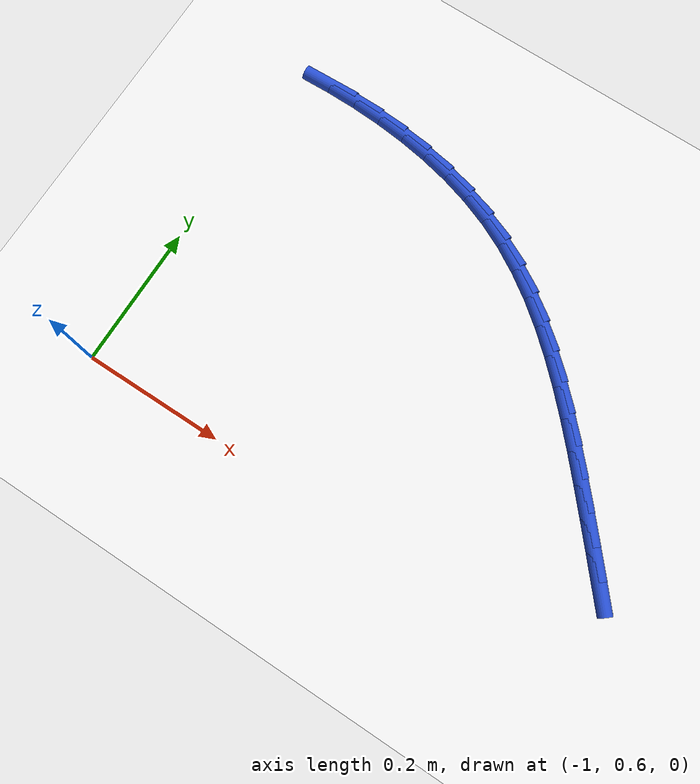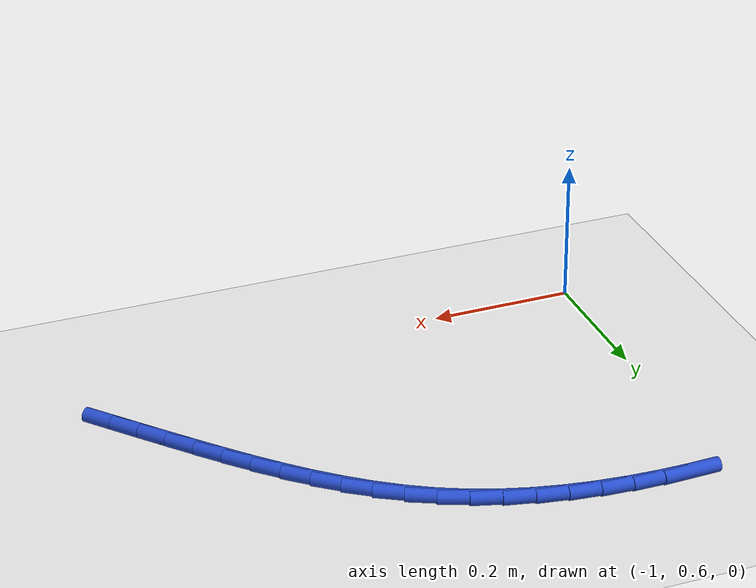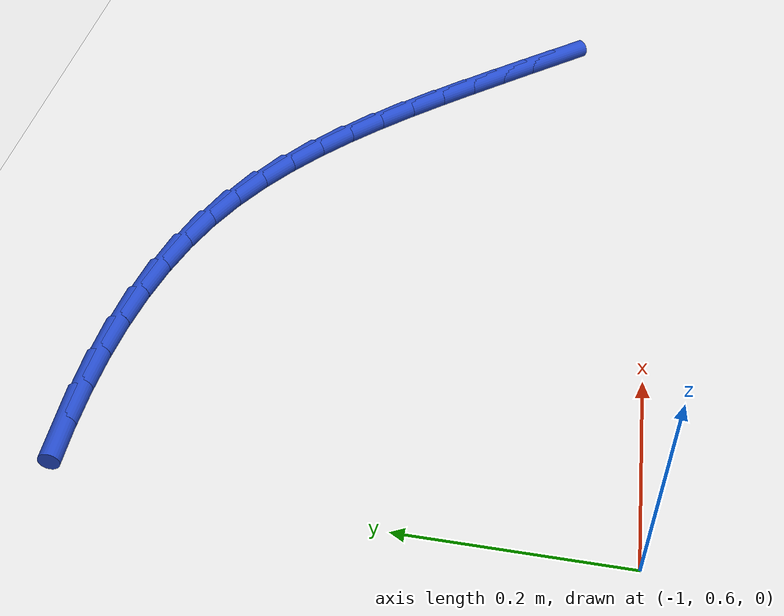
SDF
<sdf version="1.6">
 <world name="default">
  <model name="ground_plane">
   <static>1</static>
   <link name="link">
    <collision name="collision">
     <geometry><plane><normal>0 0 1</normal><size>100 100</size></plane></geometry>
     <surface><friction><ode><mu>100</mu><mu2>50</mu2></ode></friction></surface>
    </collision>
    <visual name="visual">
     <cast_shadows>0</cast_shadows>
     <geometry><plane><normal>0 0 1</normal><size>100 100</size></plane></geometry>
     <material>
      <script><uri>file://media/materials/scripts/gazebo.material</uri><name>Gazebo/WhiteGlow</name></script>
     </material>
    </visual>
   </link>
  </model>
  <model name="line">
   <link name="link_19">
    <pose>-0.29510876349324805 0.711496891847952 0.01 0 1.57 -0.8690527175127222</pose>
    <collision name="collision">
     <geometry><cylinder><radius>0.01</radius><length>0.08</length></cylinder></geometry>
    </collision>
    <visual name="visual">
     <material>
      <script><name>Gazebo/Blue</name><uri>file://media/materials/scripts/gazebo.material</uri></script>
     </material>
     <geometry><cylinder><radius>0.01</radius><length>0.08</length></cylinder></geometry>
    </visual>
   </link>
   <link name="link_20">
    <pose>-0.3224495873391285 0.7438424317667587 0.01 0 1.57 -0.8633180502594889</pose>
    <collision name="collision">
     <geometry><cylinder><radius>0.01</radius><length>0.08</length></cylinder></geometry>
    </collision>
    <visual name="visual">
     <material>
      <script><name>Gazebo/Blue</name><uri>file://media/materials/scripts/gazebo.material</uri></script>
     </material>
     <geometry><cylinder><radius>0.01</radius><length>0.08</length></cylinder></geometry>
    </visual>
   </link>
   <link name="link_21">
    <pose>-0.35008975559605277 0.7761643151670784 0.01 0 1.57 -0.8592175019860075</pose>
    <collision name="collision">
     <geometry><cylinder><radius>0.01</radius><length>0.08</length></cylinder></geometry>
    </collision>
    <visual name="visual">
     <material>
      <script><name>Gazebo/Blue</name><uri>file://media/materials/scripts/gazebo.material</uri></script>
     </material>
     <geometry><cylinder><radius>0.01</radius><length>0.08</length></cylinder></geometry>
    </visual>
   </link>
   <link name="link_22">
    <pose>-0.37794610384564287 0.8084698591030915 0.01 0 1.57 -0.8488404355890604</pose>
    <collision name="collision">
     <geometry><cylinder><radius>0.01</radius><length>0.08</length></cylinder></geometry>
    </collision>
    <visual name="visual">
     <material>
      <script><name>Gazebo/Blue</name><uri>file://media/materials/scripts/gazebo.material</uri></script>
     </material>
     <geometry><cylinder><radius>0.01</radius><length>0.08</length></cylinder></geometry>
    </visual>
   </link>
   <link name="link_23">
    <pose>-0.40613394637496614 0.8404820615667923 0.01 0 1.57 -0.830407488502026</pose>
    <collision name="collision">
     <geometry><cylinder><radius>0.01</radius><length>0.08</length></cylinder></geometry>
    </collision>
    <visual name="visual">
     <material>
      <script><name>Gazebo/Blue</name><uri>file://media/materials/scripts/gazebo.material</uri></script>
     </material>
     <geometry><cylinder><radius>0.01</radius><length>0.08</length></cylinder></geometry>
    </visual>
   </link>
   <link name="link_24">
    <pose>-0.43481061021927736 0.8718637376447229 0.01 0 1.57 -0.8036621426478653</pose>
    <collision name="collision">
     <geometry><cylinder><radius>0.01</radius><length>0.08</length></cylinder></geometry>
    </collision>
    <visual name="visual">
     <material>
      <script><name>Gazebo/Blue</name><uri>file://media/materials/scripts/gazebo.material</uri></script>
     </material>
     <geometry><cylinder><radius>0.01</radius><length>0.08</length></cylinder></geometry>
    </visual>
   </link>
   <link name="link_25">
    <pose>-0.4641334224138304 0.9022777024234249 0.01 0 1.57 -0.768227353477941</pose>
    <collision name="collision">
     <geometry><cylinder><radius>0.01</radius><length>0.08</length></cylinder></geometry>
    </collision>
    <visual name="visual">
     <material>
      <script><name>Gazebo/Blue</name><uri>file://media/materials/scripts/gazebo.material</uri></script>
     </material>
     <geometry><cylinder><radius>0.01</radius><length>0.08</length></cylinder></geometry>
    </visual>
   </link>
   <link name="link_26">
    <pose>-0.4942597099938798 0.9313867709894406 0.01 0 1.57 -0.7236518108471184</pose>
    <collision name="collision">
     <geometry><cylinder><radius>0.01</radius><length>0.08</length></cylinder></geometry>
    </collision>
    <visual name="visual">
     <material>
      <script><name>Gazebo/Blue</name><uri>file://media/materials/scripts/gazebo.material</uri></script>
     </material>
     <geometry><cylinder><radius>0.01</radius><length>0.08</length></cylinder></geometry>
    </visual>
   </link>
   <link name="link_27">
    <pose>-0.52534679999468 0.9588537584293113 0.01 0 1.57 -0.6694847480080146</pose>
    <collision name="collision">
     <geometry><cylinder><radius>0.01</radius><length>0.08</length></cylinder></geometry>
    </collision>
    <visual name="visual">
     <material>
      <script><name>Gazebo/Blue</name><uri>file://media/materials/scripts/gazebo.material</uri></script>
     </material>
     <geometry><cylinder><radius>0.01</radius><length>0.08</length></cylinder></geometry>
    </visual>
   </link>
   <link name="link_28">
    <pose>-0.5575520194514852 0.9843414798295791 0.01 0 1.57 -0.6053900049680409</pose>
    <collision name="collision">
     <geometry><cylinder><radius>0.01</radius><length>0.08</length></cylinder></geometry>
    </collision>
    <visual name="visual">
     <material>
      <script><name>Gazebo/Blue</name><uri>file://media/materials/scripts/gazebo.material</uri></script>
     </material>
     <geometry><cylinder><radius>0.01</radius><length>0.08</length></cylinder></geometry>
    </visual>
   </link>
   <link name="link_29">
    <pose>-0.5910326953995494 1.0075127502767853 0.01 0 1.57 -0.5313048802138673</pose>
    <collision name="collision">
     <geometry><cylinder><radius>0.01</radius><length>0.08</length></cylinder></geometry>
    </collision>
    <visual name="visual">
     <material>
      <script><name>Gazebo/Blue</name><uri>file://media/materials/scripts/gazebo.material</uri></script>
     </material>
     <geometry><cylinder><radius>0.01</radius><length>0.08</length></cylinder></geometry>
    </visual>
   </link>
   <link name="link_30">
    <pose>-0.6259461548741271 1.0280303848574723 0.01 0 1.57 -0.44820842569968217</pose>
    <collision name="collision">
     <geometry><cylinder><radius>0.01</radius><length>0.08</length></cylinder></geometry>
    </collision>
    <visual name="visual">
     <material>
      <script><name>Gazebo/Blue</name><uri>file://media/materials/scripts/gazebo.material</uri></script>
     </material>
     <geometry><cylinder><radius>0.01</radius><length>0.08</length></cylinder></geometry>
    </visual>
   </link>
   <link name="link_31">
    <pose>-0.6624360159127359 1.0455764378285675 0.01 0 1.57 -0.36526413194980517</pose>
    <collision name="collision">
     <geometry><cylinder><radius>0.01</radius><length>0.08</length></cylinder></geometry>
    </collision>
    <visual name="visual">
     <material>
      <script><name>Gazebo/Blue</name><uri>file://media/materials/scripts/gazebo.material</uri></script>
     </material>
     <geometry><cylinder><radius>0.01</radius><length>0.08</length></cylinder></geometry>
    </visual>
   </link>
   <link name="link_32">
    <pose>-0.7004466158305225 1.0601126334743556 0.01 0 1.57 -0.28916126103859213</pose>
    <collision name="collision">
     <geometry><cylinder><radius>0.01</radius><length>0.08</length></cylinder></geometry>
    </collision>
    <visual name="visual">
     <material>
      <script><name>Gazebo/Blue</name><uri>file://media/materials/scripts/gazebo.material</uri></script>
     </material>
     <geometry><cylinder><radius>0.01</radius><length>0.08</length></cylinder></geometry>
    </visual>
   </link>
   <link name="link_33">
    <pose>-0.7397718215045112 1.0718118658854425 0.01 0 1.57 -0.21998669579418098</pose>
    <collision name="collision">
     <geometry><cylinder><radius>0.01</radius><length>0.08</length></cylinder></geometry>
    </collision>
    <visual name="visual">
     <material>
      <script><name>Gazebo/Blue</name><uri>file://media/materials/scripts/gazebo.material</uri></script>
     </material>
     <geometry><cylinder><radius>0.01</radius><length>0.08</length></cylinder></geometry>
    </visual>
   </link>
   <link name="link_34">
    <pose>-0.7802017950548022 1.080852228398294 0.01 0 1.57 -0.15741870087668922</pose>
    <collision name="collision">
     <geometry><cylinder><radius>0.01</radius><length>0.08</length></cylinder></geometry>
    </collision>
    <visual name="visual">
     <material>
      <script><name>Gazebo/Blue</name><uri>file://media/materials/scripts/gazebo.material</uri></script>
     </material>
     <geometry><cylinder><radius>0.01</radius><length>0.08</length></cylinder></geometry>
    </visual>
   </link>
   <link name="link_35">
    <pose>-0.8215266986014952 1.087411814349373 0.01 0 1.57 -0.10098601371394565</pose>
    <collision name="collision">
     <geometry><cylinder><radius>0.01</radius><length>0.08</length></cylinder></geometry>
    </collision>
    <visual name="visual">
     <material>
      <script><name>Gazebo/Blue</name><uri>file://media/materials/scripts/gazebo.material</uri></script>
     </material>
     <geometry><cylinder><radius>0.01</radius><length>0.08</length></cylinder></geometry>
    </visual>
   </link>
   <link name="link_36">
    <pose>-0.8635366942646903 1.0916687170751453 0.01 0 1.57 -0.05014740697422647</pose>
    <collision name="collision">
     <geometry><cylinder><radius>0.01</radius><length>0.08</length></cylinder></geometry>
    </collision>
    <visual name="visual">
     <material>
      <script><name>Gazebo/Blue</name><uri>file://media/materials/scripts/gazebo.material</uri></script>
     </material>
     <geometry><cylinder><radius>0.01</radius><length>0.08</length></cylinder></geometry>
    </visual>
   </link>
   <link name="link_37">
    <pose>-0.906021944164487 1.0938010299120742 0.01 0 1.57 -0.004346484644055701</pose>
    <collision name="collision">
     <geometry><cylinder><radius>0.01</radius><length>0.08</length></cylinder></geometry>
    </collision>
    <visual name="visual">
     <material>
      <script><name>Gazebo/Blue</name><uri>file://media/materials/scripts/gazebo.material</uri></script>
     </material>
     <geometry><cylinder><radius>0.01</radius><length>0.08</length></cylinder></geometry>
    </visual>
   </link>
   <link name="link_38">
    <pose>-0.9487726104209857 1.0939868461966253 0.01 0 1.57 0.03695410515328859</pose>
    <collision name="collision">
     <geometry><cylinder><radius>0.01</radius><length>0.08</length></cylinder></geometry>
    </collision>
    <visual name="visual">
     <material>
      <script><name>Gazebo/Blue</name><uri>file://media/materials/scripts/gazebo.material</uri></script>
     </material>
     <geometry><cylinder><radius>0.01</radius><length>0.08</length></cylinder></geometry>
    </visual>
   </link>
  </model>
 </world>
</sdf>
